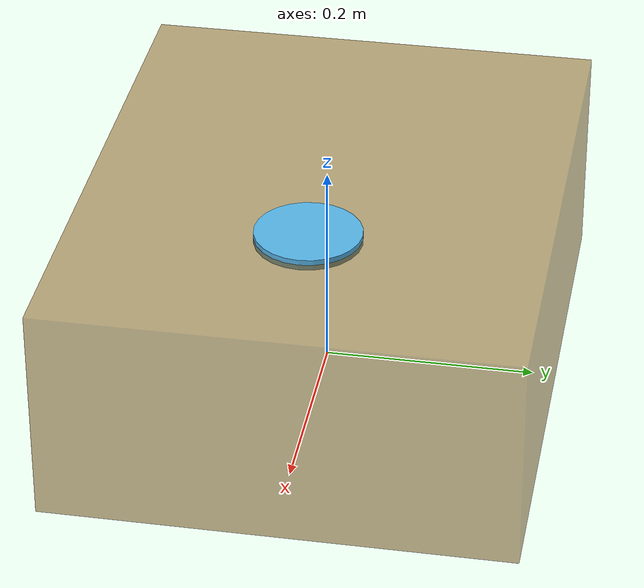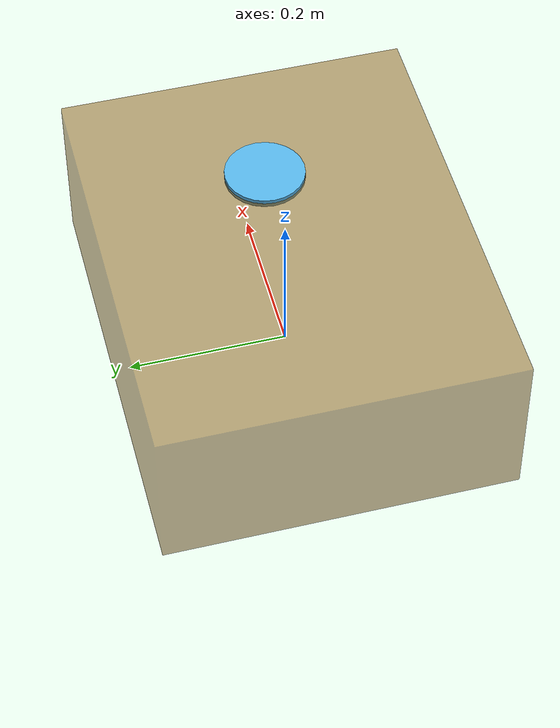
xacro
<!-- 根标签，必须声明 xmlns:xacro -->
<robot name="my_base" xmlns:xacro="http://www.ros.org/wiki/xacro">
    <!-- 封装变量、常量 -->
    <!-- PI 值设置精度需要高一些，否则后续车轮翻转量计算时，可能会出现肉眼不能察觉的车轮倾斜，从而导致模型抖动 -->
    <xacro:property name="PI" value="3.1415926" />
    <!-- 宏:黑色设置 -->
    <material name="black">
        <color rgba="0.0 0.0 0.0 1.0" />
    </material>
    <!-- 底盘属性 -->
    <xacro:property name="base_link_length" value="0.55" /> <!-- base_link 长 -->
    <xacro:property name="base_link_width" value="0.44" /> <!-- base_link 宽 -->
    <xacro:property name="base_link_height" value="0.21" /> <!-- base_link 高 -->
    <xacro:property name="earth_space" value="0.09" /> <!-- 底盘离地间距 -->

    <link name="base_link">
        <visual>
            <geometry>
                <box size="${base_link_length} ${base_link_width} ${base_link_height}" />
            </geometry>
            <origin xyz="0 0 ${earth_space}" rpy="0 0 0" />
            <material name="yellow">
                <color rgba="0.5 0.3 0.0 0.5" />
            </material>
        </visual>
    </link>

    <!-- direction link 一个红色的圆盘指示小车车头的方向 -->
    <link name="dir_link">
        <visual>
            <geometry>
                <cylinder length="0.01" radius="0.05" />
            </geometry>
        </visual>
    </link>

    <joint name="dir2base_link" type="fixed">
        <parent link="base_link" />
        <child link="dir_link" />
        <origin xyz="0.1 0 ${earth_space + base_link_height / 2 }" />
    </joint>

    <!-- 驱动轮 -->
    <!-- 驱动轮属性 -->
    <xacro:property name="wheel_radius" value="0.085" /> <!-- 半径 -->
    <xacro:property name="wheel_length" value="0.045" /> <!-- 宽度 -->

    <!-- 驱动轮宏实现 -->
    <xacro:macro name="add_wheels" params="name flag">
        <link name="${name}_wheel">
            <visual>
                <geometry>
                    <cylinder radius="${wheel_radius}" length="${wheel_length}" />
                </geometry>
                <origin xyz="0.0 0.0 0.0" rpy="${PI / 2} 0.0 0.0" />
                <material name="black" />
            </visual>
        </link>

        <joint name="${name}_wheel2base_link" type="fixed">
            <parent link="base_link" />
            <child link="${name}_wheel" />
            <origin xyz="0 ${flag * (base_link_width/2+wheel_length/2)} ${-(earth_space + base_link_height / 2 - wheel_radius) }" />
            <axis xyz="0 1 0" />
        </joint>
    </xacro:macro>

    <!-- 支撑轮 -->
    <!-- 支撑轮属性 -->
    <xacro:property name="support_wheel_radius" value="0.03" /> <!-- 支撑轮半径 -->

    <!-- 支撑轮宏 -->
    <xacro:macro name="add_support_wheel" params="name flag1 flag2">
        <link name="${name}_wheel">
            <visual>
                <geometry>
                    <sphere radius="${support_wheel_radius}" />
                </geometry>
                <origin xyz="0 0 0" rpy="0 0 0" />
                <material name="black" />
            </visual>
        </link>

        <joint name="${name}_wheel2base_link" type="continuous">
            <parent link="base_link" />
            <child link="${name}_wheel" />
            <origin xyz="${flag1 * (base_link_length/2 - support_wheel_radius)} ${flag2 * (base_link_width/2 - support_wheel_radius)} ${-(base_link_height / 2 + earth_space-support_wheel_radius)}" />
            <axis xyz="1 1 1" />
        </joint>
    </xacro:macro>

</robot>
